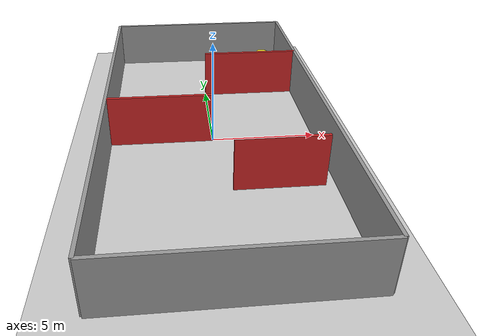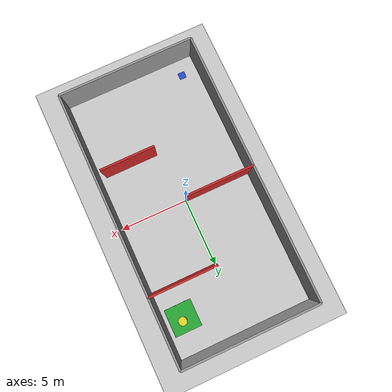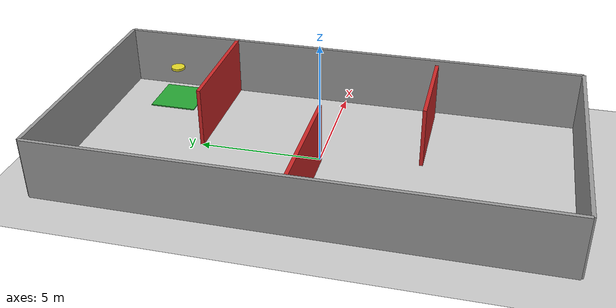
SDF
<sdf version="1.7">
 <world name="default">
  <model name="ground_plane">
   <static>1</static>
   <link name="link">
    <collision name="collision">
     <geometry><plane><normal>0 0 1</normal><size>100 100</size></plane></geometry>
     <surface><friction><ode><mu>100</mu><mu2>50</mu2></ode></friction></surface>
    </collision>
    <visual name="visual">
     <geometry><plane><normal>0 0 1</normal><size>100 100</size></plane></geometry>
     <material>
      <script><uri>file://media/materials/scripts/gazebo.material</uri><name>Gazebo/Grey</name></script>
     </material>
    </visual>
   </link>
  </model>
  <light name="sun" type="directional">
   <pose>0 0 10 0 0 0</pose>
   <diffuse>0.8 0.8 0.8 1</diffuse>
   <specular>0.2 0.2 0.2 1</specular>
   <direction>-0.5 0.1 -0.9</direction>
  </light>
  <scene><shadows>0</shadows><ambient>0.4 0.4 0.4 1</ambient><background>0.7 0.7 0.7 1</background></scene>
  <physics type="ode">
   <real_time_update_rate>1000</real_time_update_rate>
   <max_step_size>0.001</max_step_size>
   <ode>
    <solver><type>quick</type><iters>150</iters><sor>1.3</sor></solver>
    <constraints>
     <cfm>0</cfm>
     <erp>0.2</erp>
     <contact_max_correcting_vel>100</contact_max_correcting_vel>
     <contact_surface_layer>0.001</contact_surface_layer>
    </constraints>
   </ode>
  </physics>
  <gravity>0 0 -9.8</gravity>
  <model name="maze_walls">
   <static>1</static>
   <link name="wall_1">
    <pose>-5 0 1.25 0 0 0</pose>
    <collision name="collision"><geometry><box><size>0.15 20 2.5</size></box></geometry></collision>
    <visual name="visual">
     <geometry><box><size>0.15 20 2.5</size></box></geometry>
     <material>
      <script><uri>file://media/materials/scripts/gazebo.material</uri><name>Gazebo/Grey</name></script>
     </material>
    </visual>
   </link>
   <link name="wall_2">
    <pose>5 0 1.25 0 0 0</pose>
    <collision name="collision"><geometry><box><size>0.15 20 2.5</size></box></geometry></collision>
    <visual name="visual">
     <geometry><box><size>0.15 20 2.5</size></box></geometry>
     <material>
      <script><uri>file://media/materials/scripts/gazebo.material</uri><name>Gazebo/Grey</name></script>
     </material>
    </visual>
   </link>
   <link name="wall_3">
    <pose>0 10 1.25 0 0 0</pose>
    <collision name="collision"><geometry><box><size>10 0.15 2.5</size></box></geometry></collision>
    <visual name="visual">
     <geometry><box><size>10 0.15 2.5</size></box></geometry>
     <material>
      <script><uri>file://media/materials/scripts/gazebo.material</uri><name>Gazebo/Grey</name></script>
     </material>
    </visual>
   </link>
   <link name="wall_4">
    <pose>0 -10 1.25 0 0 0</pose>
    <collision name="collision"><geometry><box><size>10 0.15 2.5</size></box></geometry></collision>
    <visual name="visual">
     <geometry><box><size>10 0.15 2.5</size></box></geometry>
     <material>
      <script><uri>file://media/materials/scripts/gazebo.material</uri><name>Gazebo/Grey</name></script>
     </material>
    </visual>
   </link>
   <link name="obstacle_1">
    <pose>2.5 5 1.25 0 0 0</pose>
    <collision name="collision"><geometry><box><size>5 0.15 2.5</size></box></geometry></collision>
    <visual name="visual">
     <geometry><box><size>5 0.15 2.5</size></box></geometry>
     <material>
      <script><uri>file://media/materials/scripts/gazebo.material</uri><name>Gazebo/Red</name></script>
     </material>
    </visual>
   </link>
   <link name="obstacle_2">
    <pose>-2.5 0 1.25 0 0 0</pose>
    <collision name="collision"><geometry><box><size>5 0.15 2.5</size></box></geometry></collision>
    <visual name="visual">
     <geometry><box><size>5 0.15 2.5</size></box></geometry>
     <material>
      <script><uri>file://media/materials/scripts/gazebo.material</uri><name>Gazebo/Red</name></script>
     </material>
    </visual>
   </link>
   <link name="obstacle_3">
    <pose>2.5 -4 1.25 0 0 0</pose>
    <collision name="collision"><geometry><box><size>4 0.15 2.5</size></box></geometry></collision>
    <visual name="visual">
     <geometry><box><size>4 0.15 2.5</size></box></geometry>
     <material>
      <script><uri>file://media/materials/scripts/gazebo.material</uri><name>Gazebo/Red</name></script>
     </material>
    </visual>
   </link>
  </model>
  <model name="start_marker">
   <static>1</static>
   <pose>-3.73 -8.73 0.01 0 0 0</pose>
   <link name="link">
    <visual name="visual">
     <geometry><box><size>0.5 0.5 0.02</size></box></geometry>
     <material>
      <script><uri>file://media/materials/scripts/gazebo.material</uri><name>Gazebo/Blue</name></script>
      <ambient>0 0 1 1</ambient>
      <diffuse>0 0 1 1</diffuse>
      <emissive>0 0 0.5 1</emissive>
     </material>
    </visual>
   </link>
  </model>
  <model name="finish_line">
   <static>1</static>
   <pose>3.64 7.39 0.01 0 0 0</pose>
   <link name="link">
    <collision name="collision"><geometry><box><size>2 2 0.05</size></box></geometry></collision>
    <visual name="visual">
     <geometry><box><size>2 2 0.05</size></box></geometry>
     <material>
      <script><uri>file://media/materials/scripts/gazebo.material</uri><name>Gazebo/Green</name></script>
      <ambient>0 1 0 1</ambient>
      <diffuse>0 1 0 1</diffuse>
      <emissive>0 0.5 0 1</emissive>
     </material>
    </visual>
   </link>
  </model>
  <model name="finish_marker">
   <static>1</static>
   <pose>3.64 7.39 1.5 0 0 0</pose>
   <link name="link">
    <visual name="visual">
     <geometry><cylinder><radius>0.3</radius><length>0.1</length></cylinder></geometry>
     <material>
      <script><uri>file://media/materials/scripts/gazebo.material</uri><name>Gazebo/Yellow</name></script>
      <ambient>1 0.84 0 1</ambient>
      <diffuse>1 0.84 0 1</diffuse>
      <emissive>0.5 0.42 0 1</emissive>
     </material>
    </visual>
   </link>
  </model>
 </world>
</sdf>
